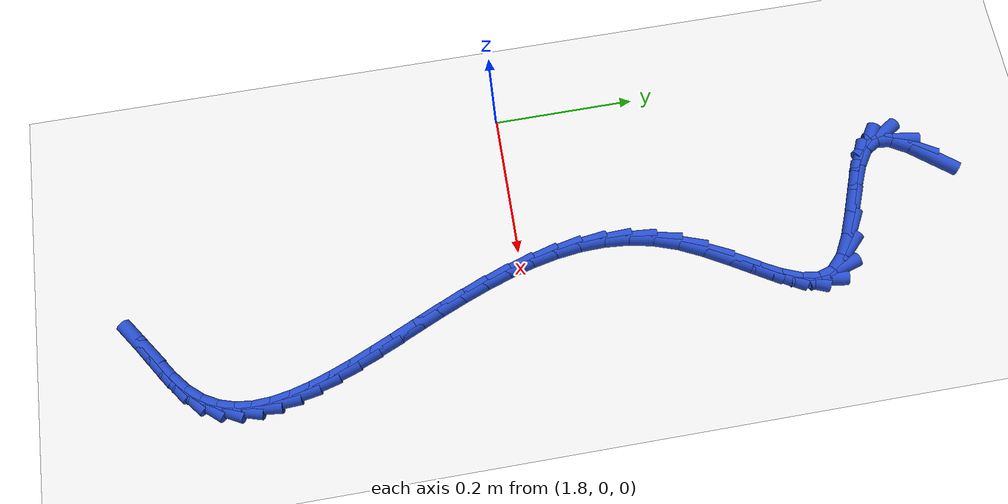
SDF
<sdf version="1.6">
 <world name="default">
  <model name="ground_plane">
   <static>1</static>
   <link name="link">
    <collision name="collision">
     <geometry><plane><normal>0 0 1</normal><size>100 100</size></plane></geometry>
     <surface><friction><ode><mu>100</mu><mu2>50</mu2></ode></friction></surface>
    </collision>
    <visual name="visual">
     <cast_shadows>0</cast_shadows>
     <geometry><plane><normal>0 0 1</normal><size>100 100</size></plane></geometry>
     <material>
      <script><uri>file://media/materials/scripts/gazebo.material</uri><name>Gazebo/WhiteGlow</name></script>
     </material>
    </visual>
   </link>
  </model>
  <model name="line">
   <link name="link_110">
    <pose>1.963320574435776 0.6075006414299142 0.01 0 1.57 0.9092565483044235</pose>
    <collision name="collision">
     <geometry><cylinder><radius>0.01</radius><length>0.08</length></cylinder></geometry>
    </collision>
    <visual name="visual">
     <material>
      <script><name>Gazebo/Blue</name><uri>file://media/materials/scripts/gazebo.material</uri></script>
     </material>
     <geometry><cylinder><radius>0.01</radius><length>0.08</length></cylinder></geometry>
    </visual>
   </link>
   <link name="link_111">
    <pose>1.9425351282164094 0.5808038643875774 0.01 0 1.57 1.0540178327978285</pose>
    <collision name="collision">
     <geometry><cylinder><radius>0.01</radius><length>0.08</length></cylinder></geometry>
    </collision>
    <visual name="visual">
     <material>
      <script><name>Gazebo/Blue</name><uri>file://media/materials/scripts/gazebo.material</uri></script>
     </material>
     <geometry><cylinder><radius>0.01</radius><length>0.08</length></cylinder></geometry>
    </visual>
   </link>
   <link name="link_112">
    <pose>1.9285682746686577 0.5562269719121533 0.01 0 1.57 1.4312147980208694</pose>
    <collision name="collision">
     <geometry><cylinder><radius>0.01</radius><length>0.08</length></cylinder></geometry>
    </collision>
    <visual name="visual">
     <material>
      <script><name>Gazebo/Blue</name><uri>file://media/materials/scripts/gazebo.material</uri></script>
     </material>
     <geometry><cylinder><radius>0.01</radius><length>0.08</length></cylinder></geometry>
    </visual>
   </link>
   <link name="link_113">
    <pose>1.925520841387745 0.5345363047944406 0.01 0 1.57 -1.021345755516329</pose>
    <collision name="collision">
     <geometry><cylinder><radius>0.01</radius><length>0.08</length></cylinder></geometry>
    </collision>
    <visual name="visual">
     <material>
      <script><name>Gazebo/Blue</name><uri>file://media/materials/scripts/gazebo.material</uri></script>
     </material>
     <geometry><cylinder><radius>0.01</radius><length>0.08</length></cylinder></geometry>
    </visual>
   </link>
   <link name="link_114">
    <pose>1.9366789456121756 0.5163145147152378 0.01 0 1.57 -0.5849695796309954</pose>
    <collision name="collision">
     <geometry><cylinder><radius>0.01</radius><length>0.08</length></cylinder></geometry>
    </collision>
    <visual name="visual">
     <material>
      <script><name>Gazebo/Blue</name><uri>file://media/materials/scripts/gazebo.material</uri></script>
     </material>
     <geometry><cylinder><radius>0.01</radius><length>0.08</length></cylinder></geometry>
    </visual>
   </link>
   <link name="link_115">
    <pose>1.959916977002811 0.5009240952781739 0.01 0 1.57 -0.4161267920371062</pose>
    <collision name="collision">
     <geometry><cylinder><radius>0.01</radius><length>0.08</length></cylinder></geometry>
    </collision>
    <visual name="visual">
     <material>
      <script><name>Gazebo/Blue</name><uri>file://media/materials/scripts/gazebo.material</uri></script>
     </material>
     <geometry><cylinder><radius>0.01</radius><length>0.08</length></cylinder></geometry>
    </visual>
   </link>
   <link name="link_116">
    <pose>1.9909032997890936 0.48723015737313935 0.01 0 1.57 -0.36475000078705205</pose>
    <collision name="collision">
     <geometry><cylinder><radius>0.01</radius><length>0.08</length></cylinder></geometry>
    </collision>
    <visual name="visual">
     <material>
      <script><name>Gazebo/Blue</name><uri>file://media/materials/scripts/gazebo.material</uri></script>
     </material>
     <geometry><cylinder><radius>0.01</radius><length>0.08</length></cylinder></geometry>
    </visual>
   </link>
   <link name="link_117">
    <pose>2.0252997973705833 0.4740963506862194 0.01 0 1.57 -0.3887881446319377</pose>
    <collision name="collision">
     <geometry><cylinder><radius>0.01</radius><length>0.08</length></cylinder></geometry>
    </collision>
    <visual name="visual">
     <material>
      <script><name>Gazebo/Blue</name><uri>file://media/materials/scripts/gazebo.material</uri></script>
     </material>
     <geometry><cylinder><radius>0.01</radius><length>0.08</length></cylinder></geometry>
    </visual>
   </link>
   <link name="link_118">
    <pose>2.0587683531468413 0.46038632490349923 0.01 0 1.57 -0.5004231926576891</pose>
    <collision name="collision">
     <geometry><cylinder><radius>0.01</radius><length>0.08</length></cylinder></geometry>
    </collision>
    <visual name="visual">
     <material>
      <script><name>Gazebo/Blue</name><uri>file://media/materials/scripts/gazebo.material</uri></script>
     </material>
     <geometry><cylinder><radius>0.01</radius><length>0.08</length></cylinder></geometry>
    </visual>
   </link>
   <link name="link_119">
    <pose>2.0869708505174276 0.44496372971106446 0.01 0 1.57 -0.7762211565304588</pose>
    <collision name="collision">
     <geometry><cylinder><radius>0.01</radius><length>0.08</length></cylinder></geometry>
    </collision>
    <visual name="visual">
     <material>
      <script><name>Gazebo/Blue</name><uri>file://media/materials/scripts/gazebo.material</uri></script>
     </material>
     <geometry><cylinder><radius>0.01</radius><length>0.08</length></cylinder></geometry>
    </visual>
   </link>
   <link name="link_120">
    <pose>2.105578580692621 0.4266944297948854 0.01 0 1.57 -1.275646112291694</pose>
    <collision name="collision">
     <geometry><cylinder><radius>0.01</radius><length>0.08</length></cylinder></geometry>
    </collision>
    <visual name="visual">
     <material>
      <script><name>Gazebo/Blue</name><uri>file://media/materials/scripts/gazebo.material</uri></script>
     </material>
     <geometry><cylinder><radius>0.01</radius><length>0.08</length></cylinder></geometry>
    </visual>
   </link>
   <link name="link_121">
    <pose>2.1122043226799447 0.4049013988726351 0.01 0 1.57 1.434045805712223</pose>
    <collision name="collision">
     <geometry><cylinder><radius>0.01</radius><length>0.08</length></cylinder></geometry>
    </collision>
    <visual name="visual">
     <material>
      <script><name>Gazebo/Blue</name><uri>file://media/materials/scripts/gazebo.material</uri></script>
     </material>
     <geometry><cylinder><radius>0.01</radius><length>0.08</length></cylinder></geometry>
    </visual>
   </link>
   <link name="link_122">
    <pose>2.1087668435635702 0.3799214239051254 0.01 0 1.57 1.1926044616725504</pose>
    <collision name="collision">
     <geometry><cylinder><radius>0.01</radius><length>0.08</length></cylinder></geometry>
    </collision>
    <visual name="visual">
     <material>
      <script><name>Gazebo/Blue</name><uri>file://media/materials/scripts/gazebo.material</uri></script>
     </material>
     <geometry><cylinder><radius>0.01</radius><length>0.08</length></cylinder></geometry>
    </visual>
   </link>
   <link name="link_123">
    <pose>2.097763572269019 0.3522275335304824 0.01 0 1.57 1.078075303259958</pose>
    <collision name="collision">
     <geometry><cylinder><radius>0.01</radius><length>0.08</length></cylinder></geometry>
    </collision>
    <visual name="visual">
     <material>
      <script><name>Gazebo/Blue</name><uri>file://media/materials/scripts/gazebo.material</uri></script>
     </material>
     <geometry><cylinder><radius>0.01</radius><length>0.08</length></cylinder></geometry>
    </visual>
   </link>
   <link name="link_124">
    <pose>2.081691937721813 0.32229275638683375 0.01 0 1.57 1.0392138173778733</pose>
    <collision name="collision">
     <geometry><cylinder><radius>0.01</radius><length>0.08</length></cylinder></geometry>
    </collision>
    <visual name="visual">
     <material>
      <script><name>Gazebo/Blue</name><uri>file://media/materials/scripts/gazebo.material</uri></script>
     </material>
     <geometry><cylinder><radius>0.01</radius><length>0.08</length></cylinder></geometry>
    </visual>
   </link>
   <link name="link_125">
    <pose>2.063049368847474 0.29059012111230564 0.01 0 1.57 1.0548457228764077</pose>
    <collision name="collision">
     <geometry><cylinder><radius>0.01</radius><length>0.08</length></cylinder></geometry>
    </collision>
    <visual name="visual">
     <material>
      <script><name>Gazebo/Blue</name><uri>file://media/materials/scripts/gazebo.material</uri></script>
     </material>
     <geometry><cylinder><radius>0.01</radius><length>0.08</length></cylinder></geometry>
    </visual>
   </link>
   <link name="link_126">
    <pose>2.0443332945715227 0.2575926563450242 0.01 0 1.57 1.1218617521087428</pose>
    <collision name="collision">
     <geometry><cylinder><radius>0.01</radius><length>0.08</length></cylinder></geometry>
    </collision>
    <visual name="visual">
     <material>
      <script><name>Gazebo/Blue</name><uri>file://media/materials/scripts/gazebo.material</uri></script>
     </material>
     <geometry><cylinder><radius>0.01</radius><length>0.08</length></cylinder></geometry>
    </visual>
   </link>
   <link name="link_127">
    <pose>2.0280411438194834 0.2237733907231174 0.01 0 1.57 1.2403094112017337</pose>
    <collision name="collision">
     <geometry><cylinder><radius>0.01</radius><length>0.08</length></cylinder></geometry>
    </collision>
    <visual name="visual">
     <material>
      <script><name>Gazebo/Blue</name><uri>file://media/materials/scripts/gazebo.material</uri></script>
     </material>
     <geometry><cylinder><radius>0.01</radius><length>0.08</length></cylinder></geometry>
    </visual>
   </link>
   <link name="link_128">
    <pose>2.016302610351907 0.18955714427693568 0.01 0 1.57 1.3700330982651452</pose>
    <collision name="collision">
     <geometry><cylinder><radius>0.01</radius><length>0.08</length></cylinder></geometry>
    </collision>
    <visual name="visual">
     <material>
      <script><name>Gazebo/Blue</name><uri>file://media/materials/scripts/gazebo.material</uri></script>
     </material>
     <geometry><cylinder><radius>0.01</radius><length>0.08</length></cylinder></geometry>
    </visual>
   </link>
   <link name="link_129">
    <pose>2.0092929657488825 0.1551125201141604 0.01 0 1.57 1.4913940963456611</pose>
    <collision name="collision">
     <geometry><cylinder><radius>0.01</radius><length>0.08</length></cylinder></geometry>
    </collision>
    <visual name="visual">
     <material>
      <script><name>Gazebo/Blue</name><uri>file://media/materials/scripts/gazebo.material</uri></script>
     </material>
     <geometry><cylinder><radius>0.01</radius><length>0.08</length></cylinder></geometry>
    </visual>
   </link>
   <link name="link_130">
    <pose>2.00654072071674 0.12052333358144858 0.01 0 1.57 -1.5409854985561928</pose>
    <collision name="collision">
     <geometry><cylinder><radius>0.01</radius><length>0.08</length></cylinder></geometry>
    </collision>
    <visual name="visual">
     <material>
      <script><name>Gazebo/Blue</name><uri>file://media/materials/scripts/gazebo.material</uri></script>
     </material>
     <geometry><cylinder><radius>0.01</radius><length>0.08</length></cylinder></geometry>
    </visual>
   </link>
   <link name="link_131">
    <pose>2.007573971650126 0.08587334571085464 0.01 0 1.57 -1.4459163231941612</pose>
    <collision name="collision">
     <geometry><cylinder><radius>0.01</radius><length>0.08</length></cylinder></geometry>
    </collision>
    <visual name="visual">
     <material>
      <script><name>Gazebo/Blue</name><uri>file://media/materials/scripts/gazebo.material</uri></script>
     </material>
     <geometry><cylinder><radius>0.01</radius><length>0.08</length></cylinder></geometry>
    </visual>
   </link>
   <link name="link_132">
    <pose>2.0119208149436907 0.05124631753443295 0.01 0 1.57 -1.3654897453581962</pose>
    <collision name="collision">
     <geometry><cylinder><radius>0.01</radius><length>0.08</length></cylinder></geometry>
    </collision>
    <visual name="visual">
     <material>
      <script><name>Gazebo/Blue</name><uri>file://media/materials/scripts/gazebo.material</uri></script>
     </material>
     <geometry><cylinder><radius>0.01</radius><length>0.08</length></cylinder></geometry>
    </visual>
   </link>
   <link name="link_133">
    <pose>2.0191093469920793 0.01672601008423678 0.01 0 1.57 -1.2992477580613577</pose>
    <collision name="collision">
     <geometry><cylinder><radius>0.01</radius><length>0.08</length></cylinder></geometry>
    </collision>
    <visual name="visual">
     <material>
      <script><name>Gazebo/Blue</name><uri>file://media/materials/scripts/gazebo.material</uri></script>
     </material>
     <geometry><cylinder><radius>0.01</radius><length>0.08</length></cylinder></geometry>
    </visual>
   </link>
   <link name="link_134">
    <pose>2.0286676641899404 -0.01760381560767745 0.01 0 1.57 -1.2462909368692903</pose>
    <collision name="collision">
     <geometry><cylinder><radius>0.01</radius><length>0.08</length></cylinder></geometry>
    </collision>
    <visual name="visual">
     <material>
      <script><name>Gazebo/Blue</name><uri>file://media/materials/scripts/gazebo.material</uri></script>
     </material>
     <geometry><cylinder><radius>0.01</radius><length>0.08</length></cylinder></geometry>
    </visual>
   </link>
   <link name="link_135">
    <pose>2.0401238629319214 -0.05165939850925645 0.01 0 1.57 -1.2056516251633085</pose>
    <collision name="collision">
     <geometry><cylinder><radius>0.01</radius><length>0.08</length></cylinder></geometry>
    </collision>
    <visual name="visual">
     <material>
      <script><name>Gazebo/Blue</name><uri>file://media/materials/scripts/gazebo.material</uri></script>
     </material>
     <geometry><cylinder><radius>0.01</radius><length>0.08</length></cylinder></geometry>
    </visual>
   </link>
   <link name="link_136">
    <pose>2.05300603961267 -0.0853569775884459 0.01 0 1.57 -1.1765264209702408</pose>
    <collision name="collision">
     <geometry><cylinder><radius>0.01</radius><length>0.08</length></cylinder></geometry>
    </collision>
    <visual name="visual">
     <material>
      <script><name>Gazebo/Blue</name><uri>file://media/materials/scripts/gazebo.material</uri></script>
     </material>
     <geometry><cylinder><radius>0.01</radius><length>0.08</length></cylinder></geometry>
    </visual>
   </link>
   <link name="link_137">
    <pose>2.0668422906268336 -0.11861279181319129 0.01 0 1.57 -1.158413566102446</pose>
    <collision name="collision">
     <geometry><cylinder><radius>0.01</radius><length>0.08</length></cylinder></geometry>
    </collision>
    <visual name="visual">
     <material>
      <script><name>Gazebo/Blue</name><uri>file://media/materials/scripts/gazebo.material</uri></script>
     </material>
     <geometry><cylinder><radius>0.01</radius><length>0.08</length></cylinder></geometry>
    </visual>
   </link>
   <link name="link_138">
    <pose>2.0811607123690603 -0.15134308015143852 0.01 0 1.57 -1.1512030923337535</pose>
    <collision name="collision">
     <geometry><cylinder><radius>0.01</radius><length>0.08</length></cylinder></geometry>
    </collision>
    <visual name="visual">
     <material>
      <script><name>Gazebo/Blue</name><uri>file://media/materials/scripts/gazebo.material</uri></script>
     </material>
     <geometry><cylinder><radius>0.01</radius><length>0.08</length></cylinder></geometry>
    </visual>
   </link>
   <link name="link_139">
    <pose>2.095489401233997 -0.1834640815711331 0.01 0 1.57 -1.1552568541999444</pose>
    <collision name="collision">
     <geometry><cylinder><radius>0.01</radius><length>0.08</length></cylinder></geometry>
    </collision>
    <visual name="visual">
     <material>
      <script><name>Gazebo/Blue</name><uri>file://media/materials/scripts/gazebo.material</uri></script>
     </material>
     <geometry><cylinder><radius>0.01</radius><length>0.08</length></cylinder></geometry>
    </visual>
   </link>
   <link name="link_140">
    <pose>2.1093564536162916 -0.21489203504022147 0.01 0 1.57 -1.1715046379864371</pose>
    <collision name="collision">
     <geometry><cylinder><radius>0.01</radius><length>0.08</length></cylinder></geometry>
    </collision>
    <visual name="visual">
     <material>
      <script><name>Gazebo/Blue</name><uri>file://media/materials/scripts/gazebo.material</uri></script>
     </material>
     <geometry><cylinder><radius>0.01</radius><length>0.08</length></cylinder></geometry>
    </visual>
   </link>
   <link name="link_141">
    <pose>2.1222899659105914 -0.2455431795266476 0.01 0 1.57 -1.2015726353319525</pose>
    <collision name="collision">
     <geometry><cylinder><radius>0.01</radius><length>0.08</length></cylinder></geometry>
    </collision>
    <visual name="visual">
     <material>
      <script><name>Gazebo/Blue</name><uri>file://media/materials/scripts/gazebo.material</uri></script>
     </material>
     <geometry><cylinder><radius>0.01</radius><length>0.08</length></cylinder></geometry>
    </visual>
   </link>
   <link name="link_142">
    <pose>2.133818034511545 -0.27533375399835813 0.01 0 1.57 -1.2479446075899303</pose>
    <collision name="collision">
     <geometry><cylinder><radius>0.01</radius><length>0.08</length></cylinder></geometry>
    </collision>
    <visual name="visual">
     <material>
      <script><name>Gazebo/Blue</name><uri>file://media/materials/scripts/gazebo.material</uri></script>
     </material>
     <geometry><cylinder><radius>0.01</radius><length>0.08</length></cylinder></geometry>
    </visual>
   </link>
   <link name="link_143">
    <pose>2.1434687558137986 -0.3041799974232986 0.01 0 1.57 -1.3141147101948543</pose>
    <collision name="collision">
     <geometry><cylinder><radius>0.01</radius><length>0.08</length></cylinder></geometry>
    </collision>
    <visual name="visual">
     <material>
      <script><name>Gazebo/Blue</name><uri>file://media/materials/scripts/gazebo.material</uri></script>
     </material>
     <geometry><cylinder><radius>0.01</radius><length>0.08</length></cylinder></geometry>
    </visual>
   </link>
   <link name="link_144">
    <pose>2.1507702262120008 -0.3319981487694147 0.01 0 1.57 -1.4045816036610685</pose>
    <collision name="collision">
     <geometry><cylinder><radius>0.01</radius><length>0.08</length></cylinder></geometry>
    </collision>
    <visual name="visual">
     <material>
      <script><name>Gazebo/Blue</name><uri>file://media/materials/scripts/gazebo.material</uri></script>
     </material>
     <geometry><cylinder><radius>0.01</radius><length>0.08</length></cylinder></geometry>
    </visual>
   </link>
   <link name="link_145">
    <pose>2.1552505421007986 -0.3587044470046521 0.01 0 1.57 -1.5242902547988475</pose>
    <collision name="collision">
     <geometry><cylinder><radius>0.01</radius><length>0.08</length></cylinder></geometry>
    </collision>
    <visual name="visual">
     <material>
      <script><name>Gazebo/Blue</name><uri>file://media/materials/scripts/gazebo.material</uri></script>
     </material>
     <geometry><cylinder><radius>0.01</radius><length>0.08</length></cylinder></geometry>
    </visual>
   </link>
   <link name="link_146">
    <pose>2.15643779987484 -0.3842151310969564 0.01 0 1.57 1.4648158403768492</pose>
    <collision name="collision">
     <geometry><cylinder><radius>0.01</radius><length>0.08</length></cylinder></geometry>
    </collision>
    <visual name="visual">
     <material>
      <script><name>Gazebo/Blue</name><uri>file://media/materials/scripts/gazebo.material</uri></script>
     </material>
     <geometry><cylinder><radius>0.01</radius><length>0.08</length></cylinder></geometry>
    </visual>
   </link>
   <link name="link_147">
    <pose>2.1538600959287724 -0.4084464400142732 0.01 0 1.57 1.2811812747986953</pose>
    <collision name="collision">
     <geometry><cylinder><radius>0.01</radius><length>0.08</length></cylinder></geometry>
    </collision>
    <visual name="visual">
     <material>
      <script><name>Gazebo/Blue</name><uri>file://media/materials/scripts/gazebo.material</uri></script>
     </material>
     <geometry><cylinder><radius>0.01</radius><length>0.08</length></cylinder></geometry>
    </visual>
   </link>
   <link name="link_148">
    <pose>2.147045526657243 -0.4313146127245483 0.01 0 1.57 1.0772601805758737</pose>
    <collision name="collision">
     <geometry><cylinder><radius>0.01</radius><length>0.08</length></cylinder></geometry>
    </collision>
    <visual name="visual">
     <material>
      <script><name>Gazebo/Blue</name><uri>file://media/materials/scripts/gazebo.material</uri></script>
     </material>
     <geometry><cylinder><radius>0.01</radius><length>0.08</length></cylinder></geometry>
    </visual>
   </link>
   <link name="link_149">
    <pose>2.1355221884548996 -0.4527358881957278 0.01 0 1.57 0.8723169928199944</pose>
    <collision name="collision">
     <geometry><cylinder><radius>0.01</radius><length>0.08</length></cylinder></geometry>
    </collision>
    <visual name="visual">
     <material>
      <script><name>Gazebo/Blue</name><uri>file://media/materials/scripts/gazebo.material</uri></script>
     </material>
     <geometry><cylinder><radius>0.01</radius><length>0.08</length></cylinder></geometry>
    </visual>
   </link>
   <link name="link_150">
    <pose>2.11881972288852 -0.4726270644310821 0.01 0 1.57 0.704795124172126</pose>
    <collision name="collision">
     <geometry><cylinder><radius>0.01</radius><length>0.08</length></cylinder></geometry>
    </collision>
    <visual name="visual">
     <material>
      <script><name>Gazebo/Blue</name><uri>file://media/materials/scripts/gazebo.material</uri></script>
     </material>
     <geometry><cylinder><radius>0.01</radius><length>0.08</length></cylinder></geometry>
    </visual>
   </link>
   <link name="link_151">
    <pose>2.0970722997800597 -0.49112365464612145 0.01 0 1.57 0.6157987596224496</pose>
    <collision name="collision">
     <geometry><cylinder><radius>0.01</radius><length>0.08</length></cylinder></geometry>
    </collision>
    <visual name="visual">
     <material>
      <script><name>Gazebo/Blue</name><uri>file://media/materials/scripts/gazebo.material</uri></script>
     </material>
     <geometry><cylinder><radius>0.01</radius><length>0.08</length></cylinder></geometry>
    </visual>
   </link>
   <link name="link_152">
    <pose>2.071934076818025 -0.508911095845662 0.01 0 1.57 0.5903109369907314</pose>
    <collision name="collision">
     <geometry><cylinder><radius>0.01</radius><length>0.08</length></cylinder></geometry>
    </collision>
    <visual name="visual">
     <material>
      <script><name>Gazebo/Blue</name><uri>file://media/materials/scripts/gazebo.material</uri></script>
     </material>
     <geometry><cylinder><radius>0.01</radius><length>0.08</length></cylinder></geometry>
    </visual>
   </link>
   <link name="link_153">
    <pose>2.0452943283662948 -0.5267598890379211 0.01 0 1.57 0.6184618503697298</pose>
    <collision name="collision">
     <geometry><cylinder><radius>0.01</radius><length>0.08</length></cylinder></geometry>
    </collision>
    <visual name="visual">
     <material>
      <script><name>Gazebo/Blue</name><uri>file://media/materials/scripts/gazebo.material</uri></script>
     </material>
     <geometry><cylinder><radius>0.01</radius><length>0.08</length></cylinder></geometry>
    </visual>
   </link>
  </model>
 </world>
</sdf>
